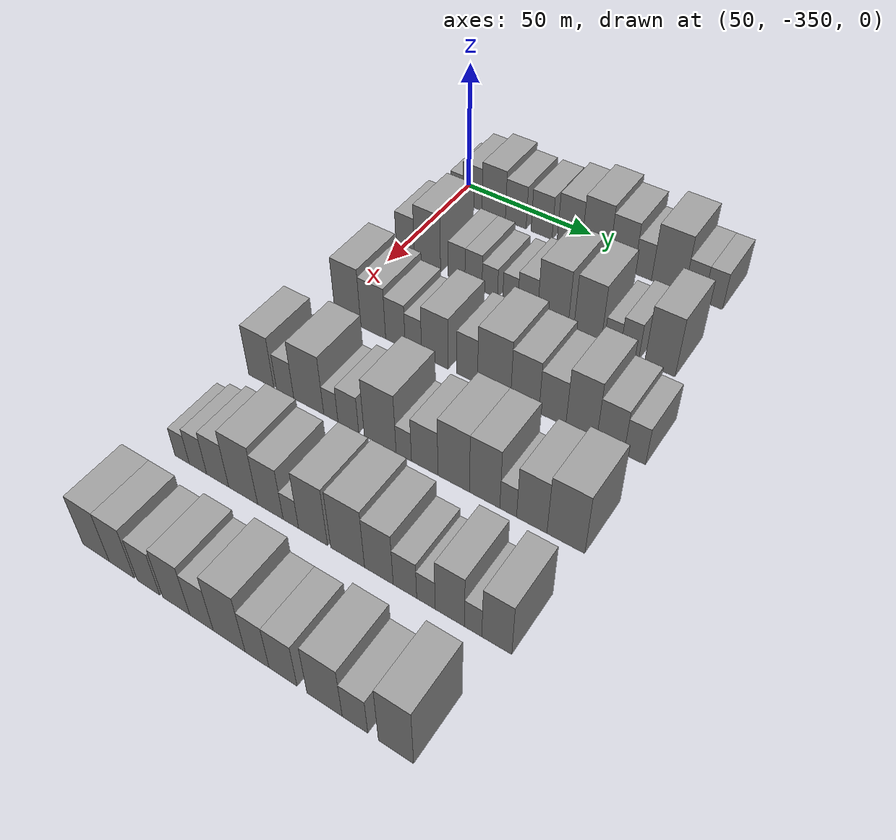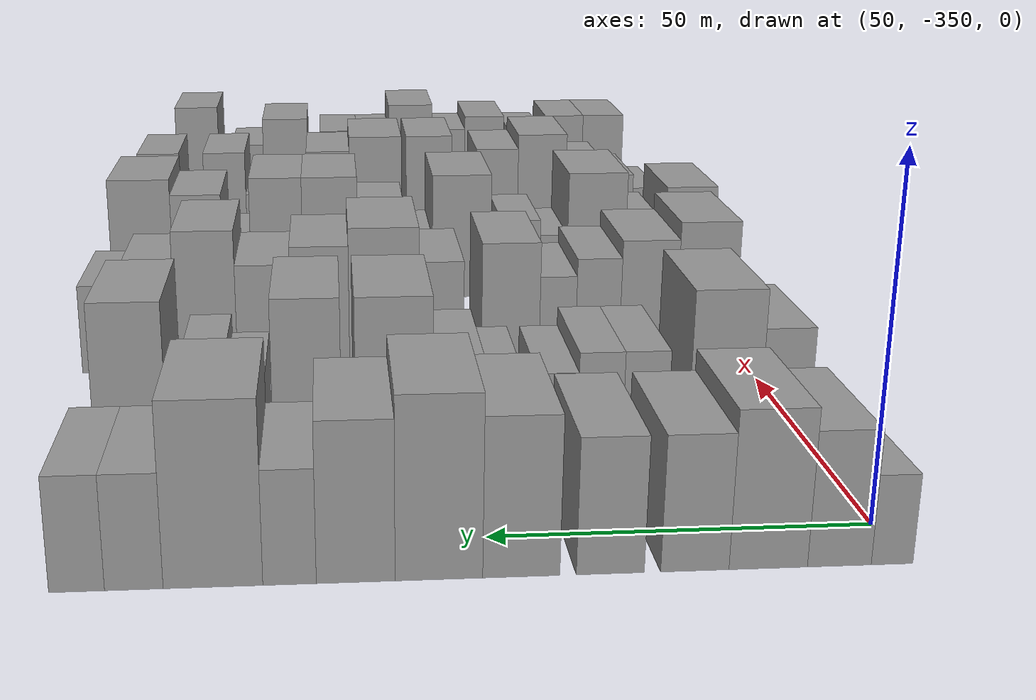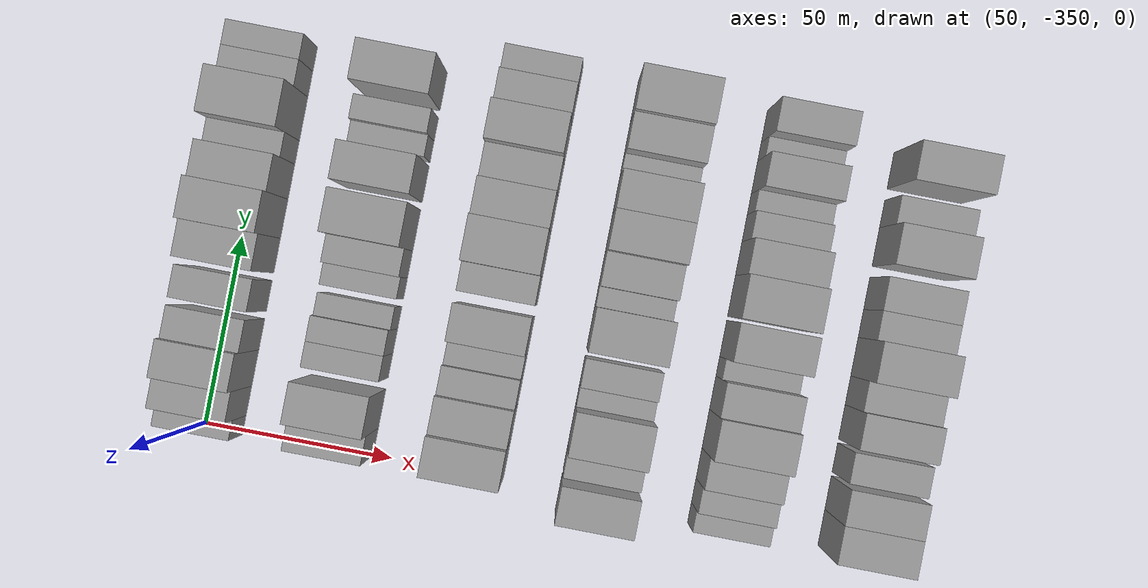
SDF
<sdf version="1.6">
 <world name="default">
  <model name="building_26">
   <static>1</static>
   <pose>50.0000 -348.7964 0 0.000000 0.000000 0.000000</pose>
   <link name="link">
    <pose>0 0 6.00 0 0 0</pose>
    <collision name="collision"><geometry><box><size>20.0000 5.2155 12.0000</size></box></geometry></collision>
    <visual name="visual">
     <cast_shadows>0</cast_shadows>
     <geometry><box><size>20.0000 5.2155 12.0000</size></box></geometry>
     <material>
      <script>
       <uri>model://grey_wall/materials/scripts</uri>
       <uri>model://grey_wall/materials/textures</uri>
       <name>vrc/grey_wall</name>
      </script>
     </material>
    </visual>
   </link>
  </model>
  <model name="building_27">
   <static>1</static>
   <pose>50.0000 -342.2135 0 0.000000 0.000000 0.000000</pose>
   <link name="link">
    <pose>0 0 9.00 0 0 0</pose>
    <collision name="collision"><geometry><box><size>20.0000 7.9502 18.0000</size></box></geometry></collision>
    <visual name="visual">
     <cast_shadows>0</cast_shadows>
     <geometry><box><size>20.0000 7.9502 18.0000</size></box></geometry>
     <material>
      <script>
       <uri>model://grey_wall/materials/scripts</uri>
       <uri>model://grey_wall/materials/textures</uri>
       <name>vrc/grey_wall</name>
      </script>
     </material>
    </visual>
   </link>
  </model>
  <model name="building_28">
   <static>1</static>
   <pose>50.0000 -333.3798 0 0.000000 0.000000 0.000000</pose>
   <link name="link">
    <pose>0 0 10.50 0 0 0</pose>
    <collision name="collision"><geometry><box><size>20.0000 9.7173 21.0000</size></box></geometry></collision>
    <visual name="visual">
     <cast_shadows>0</cast_shadows>
     <geometry><box><size>20.0000 9.7173 21.0000</size></box></geometry>
     <material>
      <script>
       <uri>model://grey_wall/materials/scripts</uri>
       <uri>model://grey_wall/materials/textures</uri>
       <name>vrc/grey_wall</name>
      </script>
     </material>
    </visual>
   </link>
  </model>
  <model name="building_29">
   <static>1</static>
   <pose>50.0000 -324.3185 0 0.000000 0.000000 0.000000</pose>
   <link name="link">
    <pose>0 0 9.00 0 0 0</pose>
    <collision name="collision"><geometry><box><size>20.0000 8.4054 18.0000</size></box></geometry></collision>
    <visual name="visual">
     <cast_shadows>0</cast_shadows>
     <geometry><box><size>20.0000 8.4054 18.0000</size></box></geometry>
     <material>
      <script>
       <uri>model://grey_wall/materials/scripts</uri>
       <uri>model://grey_wall/materials/textures</uri>
       <name>vrc/grey_wall</name>
      </script>
     </material>
    </visual>
   </link>
  </model>
  <model name="building_30">
   <static>1</static>
   <pose>50.0000 -313.9648 0 0.000000 0.000000 0.000000</pose>
   <link name="link">
    <pose>0 0 9.00 0 0 0</pose>
    <collision name="collision"><geometry><box><size>20.0000 8.3019 18.0000</size></box></geometry></collision>
    <visual name="visual">
     <cast_shadows>0</cast_shadows>
     <geometry><box><size>20.0000 8.3019 18.0000</size></box></geometry>
     <material>
      <script>
       <uri>model://grey_wall/materials/scripts</uri>
       <uri>model://grey_wall/materials/textures</uri>
       <name>vrc/grey_wall</name>
      </script>
     </material>
    </visual>
   </link>
  </model>
  <model name="building_31">
   <static>1</static>
   <pose>50.0000 -303.1424 0 0.000000 0.000000 0.000000</pose>
   <link name="link">
    <pose>0 0 10.50 0 0 0</pose>
    <collision name="collision"><geometry><box><size>20.0000 9.3428 21.0000</size></box></geometry></collision>
    <visual name="visual">
     <cast_shadows>0</cast_shadows>
     <geometry><box><size>20.0000 9.3428 21.0000</size></box></geometry>
     <material>
      <script>
       <uri>model://grey_wall/materials/scripts</uri>
       <uri>model://grey_wall/materials/textures</uri>
       <name>vrc/grey_wall</name>
      </script>
     </material>
    </visual>
   </link>
  </model>
  <model name="building_32">
   <static>1</static>
   <pose>50.0000 -293.2054 0 0.000000 0.000000 0.000000</pose>
   <link name="link">
    <pose>0 0 12.00 0 0 0</pose>
    <collision name="collision"><geometry><box><size>20.0000 10.5313 24.0000</size></box></geometry></collision>
    <visual name="visual">
     <cast_shadows>0</cast_shadows>
     <geometry><box><size>20.0000 10.5313 24.0000</size></box></geometry>
     <material>
      <script>
       <uri>model://grey_wall/materials/scripts</uri>
       <uri>model://grey_wall/materials/textures</uri>
       <name>vrc/grey_wall</name>
      </script>
     </material>
    </visual>
   </link>
  </model>
  <model name="building_33">
   <static>1</static>
   <pose>50.0000 -283.2425 0 0.000000 0.000000 0.000000</pose>
   <link name="link">
    <pose>0 0 10.50 0 0 0</pose>
    <collision name="collision"><geometry><box><size>20.0000 9.3945 21.0000</size></box></geometry></collision>
    <visual name="visual">
     <cast_shadows>0</cast_shadows>
     <geometry><box><size>20.0000 9.3945 21.0000</size></box></geometry>
     <material>
      <script>
       <uri>model://grey_wall/materials/scripts</uri>
       <uri>model://grey_wall/materials/textures</uri>
       <name>vrc/grey_wall</name>
      </script>
     </material>
    </visual>
   </link>
  </model>
  <model name="building_34">
   <static>1</static>
   <pose>50.0000 -275.3735 0 0.000000 0.000000 0.000000</pose>
   <link name="link">
    <pose>0 0 7.50 0 0 0</pose>
    <collision name="collision"><geometry><box><size>20.0000 6.3436 15.0000</size></box></geometry></collision>
    <visual name="visual">
     <cast_shadows>0</cast_shadows>
     <geometry><box><size>20.0000 6.3436 15.0000</size></box></geometry>
     <material>
      <script>
       <uri>model://grey_wall/materials/scripts</uri>
       <uri>model://grey_wall/materials/textures</uri>
       <name>vrc/grey_wall</name>
      </script>
     </material>
    </visual>
   </link>
  </model>
  <model name="building_35">
   <static>1</static>
   <pose>50.0000 -266.3294 0 0.000000 0.000000 0.000000</pose>
   <link name="link">
    <pose>0 0 12.00 0 0 0</pose>
    <collision name="collision"><geometry><box><size>20.0000 11.7447 24.0000</size></box></geometry></collision>
    <visual name="visual">
     <cast_shadows>0</cast_shadows>
     <geometry><box><size>20.0000 11.7447 24.0000</size></box></geometry>
     <material>
      <script>
       <uri>model://grey_wall/materials/scripts</uri>
       <uri>model://grey_wall/materials/textures</uri>
       <name>vrc/grey_wall</name>
      </script>
     </material>
    </visual>
   </link>
  </model>
  <model name="building_36">
   <static>1</static>
   <pose>50.0000 -257.0287 0 0.000000 0.000000 0.000000</pose>
   <link name="link">
    <pose>0 0 7.50 0 0 0</pose>
    <collision name="collision"><geometry><box><size>20.0000 6.8566 15.0000</size></box></geometry></collision>
    <visual name="visual">
     <cast_shadows>0</cast_shadows>
     <geometry><box><size>20.0000 6.8566 15.0000</size></box></geometry>
     <material>
      <script>
       <uri>model://grey_wall/materials/scripts</uri>
       <uri>model://grey_wall/materials/textures</uri>
       <name>vrc/grey_wall</name>
      </script>
     </material>
    </visual>
   </link>
  </model>
  <model name="building_37">
   <static>1</static>
   <pose>50.0000 -250.3490 0 0.000000 0.000000 0.000000</pose>
   <link name="link">
    <pose>0 0 7.50 0 0 0</pose>
    <collision name="collision"><geometry><box><size>20.0000 6.5029 15.0000</size></box></geometry></collision>
    <visual name="visual">
     <cast_shadows>0</cast_shadows>
     <geometry><box><size>20.0000 6.5029 15.0000</size></box></geometry>
     <material>
      <script>
       <uri>model://grey_wall/materials/scripts</uri>
       <uri>model://grey_wall/materials/textures</uri>
       <name>vrc/grey_wall</name>
      </script>
     </material>
    </visual>
   </link>
  </model>
  <model name="building_148">
   <static>1</static>
   <pose>85.0000 -346.4494 0 0.000000 0.000000 0.000000</pose>
   <link name="link">
    <pose>0 0 9.00 0 0 0</pose>
    <collision name="collision"><geometry><box><size>20.0000 7.3985 18.0000</size></box></geometry></collision>
    <visual name="visual">
     <cast_shadows>0</cast_shadows>
     <geometry><box><size>20.0000 7.3985 18.0000</size></box></geometry>
     <material>
      <script>
       <uri>model://grey_wall/materials/scripts</uri>
       <uri>model://grey_wall/materials/textures</uri>
       <name>vrc/grey_wall</name>
      </script>
     </material>
    </visual>
   </link>
  </model>
  <model name="building_149">
   <static>1</static>
   <pose>85.0000 -337.4831 0 0.000000 0.000000 0.000000</pose>
   <link name="link">
    <pose>0 0 12.00 0 0 0</pose>
    <collision name="collision"><geometry><box><size>20.0000 10.5341 24.0000</size></box></geometry></collision>
    <visual name="visual">
     <cast_shadows>0</cast_shadows>
     <geometry><box><size>20.0000 10.5341 24.0000</size></box></geometry>
     <material>
      <script>
       <uri>model://grey_wall/materials/scripts</uri>
       <uri>model://grey_wall/materials/textures</uri>
       <name>vrc/grey_wall</name>
      </script>
     </material>
    </visual>
   </link>
  </model>
  <model name="building_150">
   <static>1</static>
   <pose>85.0000 -325.9129 0 0.000000 0.000000 0.000000</pose>
   <link name="link">
    <pose>0 0 7.50 0 0 0</pose>
    <collision name="collision"><geometry><box><size>20.0000 6.6063 15.0000</size></box></geometry></collision>
    <visual name="visual">
     <cast_shadows>0</cast_shadows>
     <geometry><box><size>20.0000 6.6063 15.0000</size></box></geometry>
     <material>
      <script>
       <uri>model://grey_wall/materials/scripts</uri>
       <uri>model://grey_wall/materials/textures</uri>
       <name>vrc/grey_wall</name>
      </script>
     </material>
    </visual>
   </link>
  </model>
  <model name="building_151">
   <static>1</static>
   <pose>85.0000 -319.3068 0 0.000000 0.000000 0.000000</pose>
   <link name="link">
    <pose>0 0 7.50 0 0 0</pose>
    <collision name="collision"><geometry><box><size>20.0000 6.6060 15.0000</size></box></geometry></collision>
    <visual name="visual">
     <cast_shadows>0</cast_shadows>
     <geometry><box><size>20.0000 6.6060 15.0000</size></box></geometry>
     <material>
      <script>
       <uri>model://grey_wall/materials/scripts</uri>
       <uri>model://grey_wall/materials/textures</uri>
       <name>vrc/grey_wall</name>
      </script>
     </material>
    </visual>
   </link>
  </model>
  <model name="building_152">
   <static>1</static>
   <pose>85.0000 -313.0281 0 0.000000 0.000000 0.000000</pose>
   <link name="link">
    <pose>0 0 6.00 0 0 0</pose>
    <collision name="collision"><geometry><box><size>20.0000 5.9512 12.0000</size></box></geometry></collision>
    <visual name="visual">
     <cast_shadows>0</cast_shadows>
     <geometry><box><size>20.0000 5.9512 12.0000</size></box></geometry>
     <material>
      <script>
       <uri>model://grey_wall/materials/scripts</uri>
       <uri>model://grey_wall/materials/textures</uri>
       <name>vrc/grey_wall</name>
      </script>
     </material>
    </visual>
   </link>
  </model>
  <model name="building_153">
   <static>1</static>
   <pose>85.0000 -305.2150 0 0.000000 0.000000 0.000000</pose>
   <link name="link">
    <pose>0 0 6.00 0 0 0</pose>
    <collision name="collision"><geometry><box><size>20.0000 5.6751 12.0000</size></box></geometry></collision>
    <visual name="visual">
     <cast_shadows>0</cast_shadows>
     <geometry><box><size>20.0000 5.6751 12.0000</size></box></geometry>
     <material>
      <script>
       <uri>model://grey_wall/materials/scripts</uri>
       <uri>model://grey_wall/materials/textures</uri>
       <name>vrc/grey_wall</name>
      </script>
     </material>
    </visual>
   </link>
  </model>
  <model name="building_154">
   <static>1</static>
   <pose>85.0000 -298.7469 0 0.000000 0.000000 0.000000</pose>
   <link name="link">
    <pose>0 0 7.50 0 0 0</pose>
    <collision name="collision"><geometry><box><size>20.0000 7.2611 15.0000</size></box></geometry></collision>
    <visual name="visual">
     <cast_shadows>0</cast_shadows>
     <geometry><box><size>20.0000 7.2611 15.0000</size></box></geometry>
     <material>
      <script>
       <uri>model://grey_wall/materials/scripts</uri>
       <uri>model://grey_wall/materials/textures</uri>
       <name>vrc/grey_wall</name>
      </script>
     </material>
    </visual>
   </link>
  </model>
  <model name="building_155">
   <static>1</static>
   <pose>85.0000 -289.5747 0 0.000000 0.000000 0.000000</pose>
   <link name="link">
    <pose>0 0 12.00 0 0 0</pose>
    <collision name="collision"><geometry><box><size>20.0000 11.0833 24.0000</size></box></geometry></collision>
    <visual name="visual">
     <cast_shadows>0</cast_shadows>
     <geometry><box><size>20.0000 11.0833 24.0000</size></box></geometry>
     <material>
      <script>
       <uri>model://grey_wall/materials/scripts</uri>
       <uri>model://grey_wall/materials/textures</uri>
       <name>vrc/grey_wall</name>
      </script>
     </material>
    </visual>
   </link>
  </model>
  <model name="building_156">
   <static>1</static>
   <pose>85.0000 -277.1607 0 0.000000 0.000000 0.000000</pose>
   <link name="link">
    <pose>0 0 12.00 0 0 0</pose>
    <collision name="collision"><geometry><box><size>20.0000 9.7446 24.0000</size></box></geometry></collision>
    <visual name="visual">
     <cast_shadows>0</cast_shadows>
     <geometry><box><size>20.0000 9.7446 24.0000</size></box></geometry>
     <material>
      <script>
       <uri>model://grey_wall/materials/scripts</uri>
       <uri>model://grey_wall/materials/textures</uri>
       <name>vrc/grey_wall</name>
      </script>
     </material>
    </visual>
   </link>
  </model>
  <model name="building_157">
   <static>1</static>
   <pose>85.0000 -268.4667 0 0.000000 0.000000 0.000000</pose>
   <link name="link">
    <pose>0 0 6.00 0 0 0</pose>
    <collision name="collision"><geometry><box><size>20.0000 5.6433 12.0000</size></box></geometry></collision>
    <visual name="visual">
     <cast_shadows>0</cast_shadows>
     <geometry><box><size>20.0000 5.6433 12.0000</size></box></geometry>
     <material>
      <script>
       <uri>model://grey_wall/materials/scripts</uri>
       <uri>model://grey_wall/materials/textures</uri>
       <name>vrc/grey_wall</name>
      </script>
     </material>
    </visual>
   </link>
  </model>
  <model name="building_158">
   <static>1</static>
   <pose>85.0000 -262.5069 0 0.000000 0.000000 0.000000</pose>
   <link name="link">
    <pose>0 0 7.50 0 0 0</pose>
    <collision name="collision"><geometry><box><size>20.0000 6.2764 15.0000</size></box></geometry></collision>
    <visual name="visual">
     <cast_shadows>0</cast_shadows>
     <geometry><box><size>20.0000 6.2764 15.0000</size></box></geometry>
     <material>
      <script>
       <uri>model://grey_wall/materials/scripts</uri>
       <uri>model://grey_wall/materials/textures</uri>
       <name>vrc/grey_wall</name>
      </script>
     </material>
    </visual>
   </link>
  </model>
  <model name="building_159">
   <static>1</static>
   <pose>85.0000 -252.2640 0 0.000000 0.000000 0.000000</pose>
   <link name="link">
    <pose>0 0 12.00 0 0 0</pose>
    <collision name="collision"><geometry><box><size>20.0000 10.2092 24.0000</size></box></geometry></collision>
    <visual name="visual">
     <cast_shadows>0</cast_shadows>
     <geometry><box><size>20.0000 10.2092 24.0000</size></box></geometry>
     <material>
      <script>
       <uri>model://grey_wall/materials/scripts</uri>
       <uri>model://grey_wall/materials/textures</uri>
       <name>vrc/grey_wall</name>
      </script>
     </material>
    </visual>
   </link>
  </model>
  <model name="building_273">
   <static>1</static>
   <pose>120.0000 -343.9708 0 0.000000 0.000000 0.000000</pose>
   <link name="link">
    <pose>0 0 12.00 0 0 0</pose>
    <collision name="collision"><geometry><box><size>20.0000 10.2011 24.0000</size></box></geometry></collision>
    <visual name="visual">
     <cast_shadows>0</cast_shadows>
     <geometry><box><size>20.0000 10.2011 24.0000</size></box></geometry>
     <material>
      <script>
       <uri>model://grey_wall/materials/scripts</uri>
       <uri>model://grey_wall/materials/textures</uri>
       <name>vrc/grey_wall</name>
      </script>
     </material>
    </visual>
   </link>
  </model>
  <model name="building_274">
   <static>1</static>
   <pose>120.0000 -334.0596 0 0.000000 0.000000 0.000000</pose>
   <link name="link">
    <pose>0 0 10.50 0 0 0</pose>
    <collision name="collision"><geometry><box><size>20.0000 9.6213 21.0000</size></box></geometry></collision>
    <visual name="visual">
     <cast_shadows>0</cast_shadows>
     <geometry><box><size>20.0000 9.6213 21.0000</size></box></geometry>
     <material>
      <script>
       <uri>model://grey_wall/materials/scripts</uri>
       <uri>model://grey_wall/materials/textures</uri>
       <name>vrc/grey_wall</name>
      </script>
     </material>
    </visual>
   </link>
  </model>
  <model name="building_275">
   <static>1</static>
   <pose>120.0000 -325.5099 0 0.000000 0.000000 0.000000</pose>
   <link name="link">
    <pose>0 0 9.00 0 0 0</pose>
    <collision name="collision"><geometry><box><size>20.0000 7.4782 18.0000</size></box></geometry></collision>
    <visual name="visual">
     <cast_shadows>0</cast_shadows>
     <geometry><box><size>20.0000 7.4782 18.0000</size></box></geometry>
     <material>
      <script>
       <uri>model://grey_wall/materials/scripts</uri>
       <uri>model://grey_wall/materials/textures</uri>
       <name>vrc/grey_wall</name>
      </script>
     </material>
    </visual>
   </link>
  </model>
  <model name="building_276">
   <static>1</static>
   <pose>120.0000 -318.7000 0 0.000000 0.000000 0.000000</pose>
   <link name="link">
    <pose>0 0 7.50 0 0 0</pose>
    <collision name="collision"><geometry><box><size>20.0000 6.1416 15.0000</size></box></geometry></collision>
    <visual name="visual">
     <cast_shadows>0</cast_shadows>
     <geometry><box><size>20.0000 6.1416 15.0000</size></box></geometry>
     <material>
      <script>
       <uri>model://grey_wall/materials/scripts</uri>
       <uri>model://grey_wall/materials/textures</uri>
       <name>vrc/grey_wall</name>
      </script>
     </material>
    </visual>
   </link>
  </model>
  <model name="building_277">
   <static>1</static>
   <pose>120.0000 -310.7516 0 0.000000 0.000000 0.000000</pose>
   <link name="link">
    <pose>0 0 10.50 0 0 0</pose>
    <collision name="collision"><geometry><box><size>20.0000 9.7553 21.0000</size></box></geometry></collision>
    <visual name="visual">
     <cast_shadows>0</cast_shadows>
     <geometry><box><size>20.0000 9.7553 21.0000</size></box></geometry>
     <material>
      <script>
       <uri>model://grey_wall/materials/scripts</uri>
       <uri>model://grey_wall/materials/textures</uri>
       <name>vrc/grey_wall</name>
      </script>
     </material>
    </visual>
   </link>
  </model>
  <model name="building_278">
   <static>1</static>
   <pose>120.0000 -299.1382 0 0.000000 0.000000 0.000000</pose>
   <link name="link">
    <pose>0 0 9.00 0 0 0</pose>
    <collision name="collision"><geometry><box><size>20.0000 7.4715 18.0000</size></box></geometry></collision>
    <visual name="visual">
     <cast_shadows>0</cast_shadows>
     <geometry><box><size>20.0000 7.4715 18.0000</size></box></geometry>
     <material>
      <script>
       <uri>model://grey_wall/materials/scripts</uri>
       <uri>model://grey_wall/materials/textures</uri>
       <name>vrc/grey_wall</name>
      </script>
     </material>
    </visual>
   </link>
  </model>
  <model name="building_279">
   <static>1</static>
   <pose>120.0000 -289.5880 0 0.000000 0.000000 0.000000</pose>
   <link name="link">
    <pose>0 0 12.00 0 0 0</pose>
    <collision name="collision"><geometry><box><size>20.0000 11.6289 24.0000</size></box></geometry></collision>
    <visual name="visual">
     <cast_shadows>0</cast_shadows>
     <geometry><box><size>20.0000 11.6289 24.0000</size></box></geometry>
     <material>
      <script>
       <uri>model://grey_wall/materials/scripts</uri>
       <uri>model://grey_wall/materials/textures</uri>
       <name>vrc/grey_wall</name>
      </script>
     </material>
    </visual>
   </link>
  </model>
  <model name="building_280">
   <static>1</static>
   <pose>120.0000 -278.9416 0 0.000000 0.000000 0.000000</pose>
   <link name="link">
    <pose>0 0 10.50 0 0 0</pose>
    <collision name="collision"><geometry><box><size>20.0000 9.6640 21.0000</size></box></geometry></collision>
    <visual name="visual">
     <cast_shadows>0</cast_shadows>
     <geometry><box><size>20.0000 9.6640 21.0000</size></box></geometry>
     <material>
      <script>
       <uri>model://grey_wall/materials/scripts</uri>
       <uri>model://grey_wall/materials/textures</uri>
       <name>vrc/grey_wall</name>
      </script>
     </material>
    </visual>
   </link>
  </model>
  <model name="building_281">
   <static>1</static>
   <pose>120.0000 -269.6468 0 0.000000 0.000000 0.000000</pose>
   <link name="link">
    <pose>0 0 9.00 0 0 0</pose>
    <collision name="collision"><geometry><box><size>20.0000 8.9255 18.0000</size></box></geometry></collision>
    <visual name="visual">
     <cast_shadows>0</cast_shadows>
     <geometry><box><size>20.0000 8.9255 18.0000</size></box></geometry>
     <material>
      <script>
       <uri>model://grey_wall/materials/scripts</uri>
       <uri>model://grey_wall/materials/textures</uri>
       <name>vrc/grey_wall</name>
      </script>
     </material>
    </visual>
   </link>
  </model>
  <model name="building_282">
   <static>1</static>
   <pose>120.0000 -260.1610 0 0.000000 0.000000 0.000000</pose>
   <link name="link">
    <pose>0 0 12.00 0 0 0</pose>
    <collision name="collision"><geometry><box><size>20.0000 10.0461 24.0000</size></box></geometry></collision>
    <visual name="visual">
     <cast_shadows>0</cast_shadows>
     <geometry><box><size>20.0000 10.0461 24.0000</size></box></geometry>
     <material>
      <script>
       <uri>model://grey_wall/materials/scripts</uri>
       <uri>model://grey_wall/materials/textures</uri>
       <name>vrc/grey_wall</name>
      </script>
     </material>
    </visual>
   </link>
  </model>
  <model name="building_283">
   <static>1</static>
   <pose>120.0000 -250.7891 0 0.000000 0.000000 0.000000</pose>
   <link name="link">
    <pose>0 0 9.00 0 0 0</pose>
    <collision name="collision"><geometry><box><size>20.0000 8.6977 18.0000</size></box></geometry></collision>
    <visual name="visual">
     <cast_shadows>0</cast_shadows>
     <geometry><box><size>20.0000 8.6977 18.0000</size></box></geometry>
     <material>
      <script>
       <uri>model://grey_wall/materials/scripts</uri>
       <uri>model://grey_wall/materials/textures</uri>
       <name>vrc/grey_wall</name>
      </script>
     </material>
    </visual>
   </link>
  </model>
  <model name="building_284">
   <static>1</static>
   <pose>120.0000 -243.0550 0 0.000000 0.000000 0.000000</pose>
   <link name="link">
    <pose>0 0 7.50 0 0 0</pose>
    <collision name="collision"><geometry><box><size>20.0000 6.7704 15.0000</size></box></geometry></collision>
    <visual name="visual">
     <cast_shadows>0</cast_shadows>
     <geometry><box><size>20.0000 6.7704 15.0000</size></box></geometry>
     <material>
      <script>
       <uri>model://grey_wall/materials/scripts</uri>
       <uri>model://grey_wall/materials/textures</uri>
       <name>vrc/grey_wall</name>
      </script>
     </material>
    </visual>
   </link>
  </model>
  <model name="building_399">
   <static>1</static>
   <pose>155.0000 -349.8524 0 0.000000 0.000000 0.000000</pose>
   <link name="link">
    <pose>0 0 10.50 0 0 0</pose>
    <collision name="collision"><geometry><box><size>20.0000 9.7949 21.0000</size></box></geometry></collision>
    <visual name="visual">
     <cast_shadows>0</cast_shadows>
     <geometry><box><size>20.0000 9.7949 21.0000</size></box></geometry>
     <material>
      <script>
       <uri>model://grey_wall/materials/scripts</uri>
       <uri>model://grey_wall/materials/textures</uri>
       <name>vrc/grey_wall</name>
      </script>
     </material>
    </visual>
   </link>
  </model>
  <model name="building_400">
   <static>1</static>
   <pose>155.0000 -340.6437 0 0.000000 0.000000 0.000000</pose>
   <link name="link">
    <pose>0 0 7.50 0 0 0</pose>
    <collision name="collision"><geometry><box><size>20.0000 6.6225 15.0000</size></box></geometry></collision>
    <visual name="visual">
     <cast_shadows>0</cast_shadows>
     <geometry><box><size>20.0000 6.6225 15.0000</size></box></geometry>
     <material>
      <script>
       <uri>model://grey_wall/materials/scripts</uri>
       <uri>model://grey_wall/materials/textures</uri>
       <name>vrc/grey_wall</name>
      </script>
     </material>
    </visual>
   </link>
  </model>
  <model name="building_401">
   <static>1</static>
   <pose>155.0000 -331.7100 0 0.000000 0.000000 0.000000</pose>
   <link name="link">
    <pose>0 0 12.00 0 0 0</pose>
    <collision name="collision"><geometry><box><size>20.0000 11.2450 24.0000</size></box></geometry></collision>
    <visual name="visual">
     <cast_shadows>0</cast_shadows>
     <geometry><box><size>20.0000 11.2450 24.0000</size></box></geometry>
     <material>
      <script>
       <uri>model://grey_wall/materials/scripts</uri>
       <uri>model://grey_wall/materials/textures</uri>
       <name>vrc/grey_wall</name>
      </script>
     </material>
    </visual>
   </link>
  </model>
  <model name="building_402">
   <static>1</static>
   <pose>155.0000 -323.4785 0 0.000000 0.000000 0.000000</pose>
   <link name="link">
    <pose>0 0 6.00 0 0 0</pose>
    <collision name="collision"><geometry><box><size>20.0000 5.2180 12.0000</size></box></geometry></collision>
    <visual name="visual">
     <cast_shadows>0</cast_shadows>
     <geometry><box><size>20.0000 5.2180 12.0000</size></box></geometry>
     <material>
      <script>
       <uri>model://grey_wall/materials/scripts</uri>
       <uri>model://grey_wall/materials/textures</uri>
       <name>vrc/grey_wall</name>
      </script>
     </material>
    </visual>
   </link>
  </model>
  <model name="building_403">
   <static>1</static>
   <pose>155.0000 -317.1235 0 0.000000 0.000000 0.000000</pose>
   <link name="link">
    <pose>0 0 7.50 0 0 0</pose>
    <collision name="collision"><geometry><box><size>20.0000 7.4919 15.0000</size></box></geometry></collision>
    <visual name="visual">
     <cast_shadows>0</cast_shadows>
     <geometry><box><size>20.0000 7.4919 15.0000</size></box></geometry>
     <material>
      <script>
       <uri>model://grey_wall/materials/scripts</uri>
       <uri>model://grey_wall/materials/textures</uri>
       <name>vrc/grey_wall</name>
      </script>
     </material>
    </visual>
   </link>
  </model>
  <model name="building_404">
   <static>1</static>
   <pose>155.0000 -305.7935 0 0.000000 0.000000 0.000000</pose>
   <link name="link">
    <pose>0 0 12.00 0 0 0</pose>
    <collision name="collision"><geometry><box><size>20.0000 11.1681 24.0000</size></box></geometry></collision>
    <visual name="visual">
     <cast_shadows>0</cast_shadows>
     <geometry><box><size>20.0000 11.1681 24.0000</size></box></geometry>
     <material>
      <script>
       <uri>model://grey_wall/materials/scripts</uri>
       <uri>model://grey_wall/materials/textures</uri>
       <name>vrc/grey_wall</name>
      </script>
     </material>
    </visual>
   </link>
  </model>
  <model name="building_405">
   <static>1</static>
   <pose>155.0000 -297.5695 0 0.000000 0.000000 0.000000</pose>
   <link name="link">
    <pose>0 0 6.00 0 0 0</pose>
    <collision name="collision"><geometry><box><size>20.0000 5.2800 12.0000</size></box></geometry></collision>
    <visual name="visual">
     <cast_shadows>0</cast_shadows>
     <geometry><box><size>20.0000 5.2800 12.0000</size></box></geometry>
     <material>
      <script>
       <uri>model://grey_wall/materials/scripts</uri>
       <uri>model://grey_wall/materials/textures</uri>
       <name>vrc/grey_wall</name>
      </script>
     </material>
    </visual>
   </link>
  </model>
  <model name="building_406">
   <static>1</static>
   <pose>155.0000 -290.4606 0 0.000000 0.000000 0.000000</pose>
   <link name="link">
    <pose>0 0 9.00 0 0 0</pose>
    <collision name="collision"><geometry><box><size>20.0000 8.9379 18.0000</size></box></geometry></collision>
    <visual name="visual">
     <cast_shadows>0</cast_shadows>
     <geometry><box><size>20.0000 8.9379 18.0000</size></box></geometry>
     <material>
      <script>
       <uri>model://grey_wall/materials/scripts</uri>
       <uri>model://grey_wall/materials/textures</uri>
       <name>vrc/grey_wall</name>
      </script>
     </material>
    </visual>
   </link>
  </model>
  <model name="building_407">
   <static>1</static>
   <pose>155.0000 -280.8181 0 0.000000 0.000000 0.000000</pose>
   <link name="link">
    <pose>0 0 12.00 0 0 0</pose>
    <collision name="collision"><geometry><box><size>20.0000 10.3470 24.0000</size></box></geometry></collision>
    <visual name="visual">
     <cast_shadows>0</cast_shadows>
     <geometry><box><size>20.0000 10.3470 24.0000</size></box></geometry>
     <material>
      <script>
       <uri>model://grey_wall/materials/scripts</uri>
       <uri>model://grey_wall/materials/textures</uri>
       <name>vrc/grey_wall</name>
      </script>
     </material>
    </visual>
   </link>
  </model>
  <model name="building_408">
   <static>1</static>
   <pose>155.0000 -270.7621 0 0.000000 0.000000 0.000000</pose>
   <link name="link">
    <pose>0 0 12.00 0 0 0</pose>
    <collision name="collision"><geometry><box><size>20.0000 9.7650 24.0000</size></box></geometry></collision>
    <visual name="visual">
     <cast_shadows>0</cast_shadows>
     <geometry><box><size>20.0000 9.7650 24.0000</size></box></geometry>
     <material>
      <script>
       <uri>model://grey_wall/materials/scripts</uri>
       <uri>model://grey_wall/materials/textures</uri>
       <name>vrc/grey_wall</name>
      </script>
     </material>
    </visual>
   </link>
  </model>
  <model name="building_409">
   <static>1</static>
   <pose>155.0000 -263.2362 0 0.000000 0.000000 0.000000</pose>
   <link name="link">
    <pose>0 0 6.00 0 0 0</pose>
    <collision name="collision"><geometry><box><size>20.0000 5.2868 12.0000</size></box></geometry></collision>
    <visual name="visual">
     <cast_shadows>0</cast_shadows>
     <geometry><box><size>20.0000 5.2868 12.0000</size></box></geometry>
     <material>
      <script>
       <uri>model://grey_wall/materials/scripts</uri>
       <uri>model://grey_wall/materials/textures</uri>
       <name>vrc/grey_wall</name>
      </script>
     </material>
    </visual>
   </link>
  </model>
  <model name="building_410">
   <static>1</static>
   <pose>155.0000 -255.9141 0 0.000000 0.000000 0.000000</pose>
   <link name="link">
    <pose>0 0 10.50 0 0 0</pose>
    <collision name="collision"><geometry><box><size>20.0000 9.3574 21.0000</size></box></geometry></collision>
    <visual name="visual">
     <cast_shadows>0</cast_shadows>
     <geometry><box><size>20.0000 9.3574 21.0000</size></box></geometry>
     <material>
      <script>
       <uri>model://grey_wall/materials/scripts</uri>
       <uri>model://grey_wall/materials/textures</uri>
       <name>vrc/grey_wall</name>
      </script>
     </material>
    </visual>
   </link>
  </model>
  <model name="building_411">
   <static>1</static>
   <pose>155.0000 -245.5394 0 0.000000 0.000000 0.000000</pose>
   <link name="link">
    <pose>0 0 12.00 0 0 0</pose>
    <collision name="collision"><geometry><box><size>20.0000 11.3920 24.0000</size></box></geometry></collision>
    <visual name="visual">
     <cast_shadows>0</cast_shadows>
     <geometry><box><size>20.0000 11.3920 24.0000</size></box></geometry>
     <material>
      <script>
       <uri>model://grey_wall/materials/scripts</uri>
       <uri>model://grey_wall/materials/textures</uri>
       <name>vrc/grey_wall</name>
      </script>
     </material>
    </visual>
   </link>
  </model>
  <model name="building_520">
   <static>1</static>
   <pose>190.0000 -348.8999 0 0.000000 0.000000 0.000000</pose>
   <link name="link">
    <pose>0 0 6.00 0 0 0</pose>
    <collision name="collision"><geometry><box><size>20.0000 5.4517 12.0000</size></box></geometry></collision>
    <visual name="visual">
     <cast_shadows>0</cast_shadows>
     <geometry><box><size>20.0000 5.4517 12.0000</size></box></geometry>
     <material>
      <script>
       <uri>model://grey_wall/materials/scripts</uri>
       <uri>model://grey_wall/materials/textures</uri>
       <name>vrc/grey_wall</name>
      </script>
     </material>
    </visual>
   </link>
  </model>
  <model name="building_521">
   <static>1</static>
   <pose>190.0000 -342.9201 0 0.000000 0.000000 0.000000</pose>
   <link name="link">
    <pose>0 0 7.50 0 0 0</pose>
    <collision name="collision"><geometry><box><size>20.0000 6.5080 15.0000</size></box></geometry></collision>
    <visual name="visual">
     <cast_shadows>0</cast_shadows>
     <geometry><box><size>20.0000 6.5080 15.0000</size></box></geometry>
     <material>
      <script>
       <uri>model://grey_wall/materials/scripts</uri>
       <uri>model://grey_wall/materials/textures</uri>
       <name>vrc/grey_wall</name>
      </script>
     </material>
    </visual>
   </link>
  </model>
  <model name="building_522">
   <static>1</static>
   <pose>190.0000 -335.6119 0 0.000000 0.000000 0.000000</pose>
   <link name="link">
    <pose>0 0 9.00 0 0 0</pose>
    <collision name="collision"><geometry><box><size>20.0000 8.1084 18.0000</size></box></geometry></collision>
    <visual name="visual">
     <cast_shadows>0</cast_shadows>
     <geometry><box><size>20.0000 8.1084 18.0000</size></box></geometry>
     <material>
      <script>
       <uri>model://grey_wall/materials/scripts</uri>
       <uri>model://grey_wall/materials/textures</uri>
       <name>vrc/grey_wall</name>
      </script>
     </material>
    </visual>
   </link>
  </model>
  <model name="building_523">
   <static>1</static>
   <pose>190.0000 -326.3696 0 0.000000 0.000000 0.000000</pose>
   <link name="link">
    <pose>0 0 12.00 0 0 0</pose>
    <collision name="collision"><geometry><box><size>20.0000 10.3762 24.0000</size></box></geometry></collision>
    <visual name="visual">
     <cast_shadows>0</cast_shadows>
     <geometry><box><size>20.0000 10.3762 24.0000</size></box></geometry>
     <material>
      <script>
       <uri>model://grey_wall/materials/scripts</uri>
       <uri>model://grey_wall/materials/textures</uri>
       <name>vrc/grey_wall</name>
      </script>
     </material>
    </visual>
   </link>
  </model>
  <model name="building_524">
   <static>1</static>
   <pose>190.0000 -316.7179 0 0.000000 0.000000 0.000000</pose>
   <link name="link">
    <pose>0 0 10.50 0 0 0</pose>
    <collision name="collision"><geometry><box><size>20.0000 8.9272 21.0000</size></box></geometry></collision>
    <visual name="visual">
     <cast_shadows>0</cast_shadows>
     <geometry><box><size>20.0000 8.9272 21.0000</size></box></geometry>
     <material>
      <script>
       <uri>model://grey_wall/materials/scripts</uri>
       <uri>model://grey_wall/materials/textures</uri>
       <name>vrc/grey_wall</name>
      </script>
     </material>
    </visual>
   </link>
  </model>
  <model name="building_525">
   <static>1</static>
   <pose>190.0000 -309.6119 0 0.000000 0.000000 0.000000</pose>
   <link name="link">
    <pose>0 0 6.00 0 0 0</pose>
    <collision name="collision"><geometry><box><size>20.0000 5.2848 12.0000</size></box></geometry></collision>
    <visual name="visual">
     <cast_shadows>0</cast_shadows>
     <geometry><box><size>20.0000 5.2848 12.0000</size></box></geometry>
     <material>
      <script>
       <uri>model://grey_wall/materials/scripts</uri>
       <uri>model://grey_wall/materials/textures</uri>
       <name>vrc/grey_wall</name>
      </script>
     </material>
    </visual>
   </link>
  </model>
  <model name="building_526">
   <static>1</static>
   <pose>190.0000 -302.0915 0 0.000000 0.000000 0.000000</pose>
   <link name="link">
    <pose>0 0 12.00 0 0 0</pose>
    <collision name="collision"><geometry><box><size>20.0000 9.7559 24.0000</size></box></geometry></collision>
    <visual name="visual">
     <cast_shadows>0</cast_shadows>
     <geometry><box><size>20.0000 9.7559 24.0000</size></box></geometry>
     <material>
      <script>
       <uri>model://grey_wall/materials/scripts</uri>
       <uri>model://grey_wall/materials/textures</uri>
       <name>vrc/grey_wall</name>
      </script>
     </material>
    </visual>
   </link>
  </model>
  <model name="building_527">
   <static>1</static>
   <pose>190.0000 -290.6841 0 0.000000 0.000000 0.000000</pose>
   <link name="link">
    <pose>0 0 12.00 0 0 0</pose>
    <collision name="collision"><geometry><box><size>20.0000 11.0589 24.0000</size></box></geometry></collision>
    <visual name="visual">
     <cast_shadows>0</cast_shadows>
     <geometry><box><size>20.0000 11.0589 24.0000</size></box></geometry>
     <material>
      <script>
       <uri>model://grey_wall/materials/scripts</uri>
       <uri>model://grey_wall/materials/textures</uri>
       <name>vrc/grey_wall</name>
      </script>
     </material>
    </visual>
   </link>
  </model>
  <model name="building_528">
   <static>1</static>
   <pose>190.0000 -280.6127 0 0.000000 0.000000 0.000000</pose>
   <link name="link">
    <pose>0 0 10.50 0 0 0</pose>
    <collision name="collision"><geometry><box><size>20.0000 9.0837 21.0000</size></box></geometry></collision>
    <visual name="visual">
     <cast_shadows>0</cast_shadows>
     <geometry><box><size>20.0000 9.0837 21.0000</size></box></geometry>
     <material>
      <script>
       <uri>model://grey_wall/materials/scripts</uri>
       <uri>model://grey_wall/materials/textures</uri>
       <name>vrc/grey_wall</name>
      </script>
     </material>
    </visual>
   </link>
  </model>
  <model name="building_529">
   <static>1</static>
   <pose>190.0000 -272.4365 0 0.000000 0.000000 0.000000</pose>
   <link name="link">
    <pose>0 0 7.50 0 0 0</pose>
    <collision name="collision"><geometry><box><size>20.0000 7.2687 15.0000</size></box></geometry></collision>
    <visual name="visual">
     <cast_shadows>0</cast_shadows>
     <geometry><box><size>20.0000 7.2687 15.0000</size></box></geometry>
     <material>
      <script>
       <uri>model://grey_wall/materials/scripts</uri>
       <uri>model://grey_wall/materials/textures</uri>
       <name>vrc/grey_wall</name>
      </script>
     </material>
    </visual>
   </link>
  </model>
  <model name="building_530">
   <static>1</static>
   <pose>190.0000 -265.9991 0 0.000000 0.000000 0.000000</pose>
   <link name="link">
    <pose>0 0 6.00 0 0 0</pose>
    <collision name="collision"><geometry><box><size>20.0000 5.6061 12.0000</size></box></geometry></collision>
    <visual name="visual">
     <cast_shadows>0</cast_shadows>
     <geometry><box><size>20.0000 5.6061 12.0000</size></box></geometry>
     <material>
      <script>
       <uri>model://grey_wall/materials/scripts</uri>
       <uri>model://grey_wall/materials/textures</uri>
       <name>vrc/grey_wall</name>
      </script>
     </material>
    </visual>
   </link>
  </model>
  <model name="building_531">
   <static>1</static>
   <pose>190.0000 -258.8381 0 0.000000 0.000000 0.000000</pose>
   <link name="link">
    <pose>0 0 10.50 0 0 0</pose>
    <collision name="collision"><geometry><box><size>20.0000 8.7160 21.0000</size></box></geometry></collision>
    <visual name="visual">
     <cast_shadows>0</cast_shadows>
     <geometry><box><size>20.0000 8.7160 21.0000</size></box></geometry>
     <material>
      <script>
       <uri>model://grey_wall/materials/scripts</uri>
       <uri>model://grey_wall/materials/textures</uri>
       <name>vrc/grey_wall</name>
      </script>
     </material>
    </visual>
   </link>
  </model>
  <model name="building_532">
   <static>1</static>
   <pose>190.0000 -251.9561 0 0.000000 0.000000 0.000000</pose>
   <link name="link">
    <pose>0 0 6.00 0 0 0</pose>
    <collision name="collision"><geometry><box><size>20.0000 5.0481 12.0000</size></box></geometry></collision>
    <visual name="visual">
     <cast_shadows>0</cast_shadows>
     <geometry><box><size>20.0000 5.0481 12.0000</size></box></geometry>
     <material>
      <script>
       <uri>model://grey_wall/materials/scripts</uri>
       <uri>model://grey_wall/materials/textures</uri>
       <name>vrc/grey_wall</name>
      </script>
     </material>
    </visual>
   </link>
  </model>
  <model name="building_533">
   <static>1</static>
   <pose>190.0000 -245.1245 0 0.000000 0.000000 0.000000</pose>
   <link name="link">
    <pose>0 0 10.50 0 0 0</pose>
    <collision name="collision"><geometry><box><size>20.0000 8.6150 21.0000</size></box></geometry></collision>
    <visual name="visual">
     <cast_shadows>0</cast_shadows>
     <geometry><box><size>20.0000 8.6150 21.0000</size></box></geometry>
     <material>
      <script>
       <uri>model://grey_wall/materials/scripts</uri>
       <uri>model://grey_wall/materials/textures</uri>
       <name>vrc/grey_wall</name>
      </script>
     </material>
    </visual>
   </link>
  </model>
  <model name="building_647">
   <static>1</static>
   <pose>225.0000 -346.1576 0 0.000000 0.000000 0.000000</pose>
   <link name="link">
    <pose>0 0 10.50 0 0 0</pose>
    <collision name="collision"><geometry><box><size>20.0000 9.6417 21.0000</size></box></geometry></collision>
    <visual name="visual">
     <cast_shadows>0</cast_shadows>
     <geometry><box><size>20.0000 9.6417 21.0000</size></box></geometry>
     <material>
      <script>
       <uri>model://grey_wall/materials/scripts</uri>
       <uri>model://grey_wall/materials/textures</uri>
       <name>vrc/grey_wall</name>
      </script>
     </material>
    </visual>
   </link>
  </model>
  <model name="building_648">
   <static>1</static>
   <pose>225.0000 -336.8144 0 0.000000 0.000000 0.000000</pose>
   <link name="link">
    <pose>0 0 10.50 0 0 0</pose>
    <collision name="collision"><geometry><box><size>20.0000 9.0447 21.0000</size></box></geometry></collision>
    <visual name="visual">
     <cast_shadows>0</cast_shadows>
     <geometry><box><size>20.0000 9.0447 21.0000</size></box></geometry>
     <material>
      <script>
       <uri>model://grey_wall/materials/scripts</uri>
       <uri>model://grey_wall/materials/textures</uri>
       <name>vrc/grey_wall</name>
      </script>
     </material>
    </visual>
   </link>
  </model>
  <model name="building_649">
   <static>1</static>
   <pose>225.0000 -327.3464 0 0.000000 0.000000 0.000000</pose>
   <link name="link">
    <pose>0 0 9.00 0 0 0</pose>
    <collision name="collision"><geometry><box><size>20.0000 7.8914 18.0000</size></box></geometry></collision>
    <visual name="visual">
     <cast_shadows>0</cast_shadows>
     <geometry><box><size>20.0000 7.8914 18.0000</size></box></geometry>
     <material>
      <script>
       <uri>model://grey_wall/materials/scripts</uri>
       <uri>model://grey_wall/materials/textures</uri>
       <name>vrc/grey_wall</name>
      </script>
     </material>
    </visual>
   </link>
  </model>
  <model name="building_650">
   <static>1</static>
   <pose>225.0000 -317.7765 0 0.000000 0.000000 0.000000</pose>
   <link name="link">
    <pose>0 0 10.50 0 0 0</pose>
    <collision name="collision"><geometry><box><size>20.0000 9.2484 21.0000</size></box></geometry></collision>
    <visual name="visual">
     <cast_shadows>0</cast_shadows>
     <geometry><box><size>20.0000 9.2484 21.0000</size></box></geometry>
     <material>
      <script>
       <uri>model://grey_wall/materials/scripts</uri>
       <uri>model://grey_wall/materials/textures</uri>
       <name>vrc/grey_wall</name>
      </script>
     </material>
    </visual>
   </link>
  </model>
  <model name="building_651">
   <static>1</static>
   <pose>225.0000 -309.2663 0 0.000000 0.000000 0.000000</pose>
   <link name="link">
    <pose>0 0 9.00 0 0 0</pose>
    <collision name="collision"><geometry><box><size>20.0000 7.7721 18.0000</size></box></geometry></collision>
    <visual name="visual">
     <cast_shadows>0</cast_shadows>
     <geometry><box><size>20.0000 7.7721 18.0000</size></box></geometry>
     <material>
      <script>
       <uri>model://grey_wall/materials/scripts</uri>
       <uri>model://grey_wall/materials/textures</uri>
       <name>vrc/grey_wall</name>
      </script>
     </material>
    </visual>
   </link>
  </model>
  <model name="building_652">
   <static>1</static>
   <pose>225.0000 -300.2149 0 0.000000 0.000000 0.000000</pose>
   <link name="link">
    <pose>0 0 12.00 0 0 0</pose>
    <collision name="collision"><geometry><box><size>20.0000 10.3306 24.0000</size></box></geometry></collision>
    <visual name="visual">
     <cast_shadows>0</cast_shadows>
     <geometry><box><size>20.0000 10.3306 24.0000</size></box></geometry>
     <material>
      <script>
       <uri>model://grey_wall/materials/scripts</uri>
       <uri>model://grey_wall/materials/textures</uri>
       <name>vrc/grey_wall</name>
      </script>
     </material>
    </visual>
   </link>
  </model>
  <model name="building_653">
   <static>1</static>
   <pose>225.0000 -291.2835 0 0.000000 0.000000 0.000000</pose>
   <link name="link">
    <pose>0 0 9.00 0 0 0</pose>
    <collision name="collision"><geometry><box><size>20.0000 7.5321 18.0000</size></box></geometry></collision>
    <visual name="visual">
     <cast_shadows>0</cast_shadows>
     <geometry><box><size>20.0000 7.5321 18.0000</size></box></geometry>
     <material>
      <script>
       <uri>model://grey_wall/materials/scripts</uri>
       <uri>model://grey_wall/materials/textures</uri>
       <name>vrc/grey_wall</name>
      </script>
     </material>
    </visual>
   </link>
  </model>
  <model name="building_654">
   <static>1</static>
   <pose>225.0000 -283.2065 0 0.000000 0.000000 0.000000</pose>
   <link name="link">
    <pose>0 0 9.00 0 0 0</pose>
    <collision name="collision"><geometry><box><size>20.0000 8.6220 18.0000</size></box></geometry></collision>
    <visual name="visual">
     <cast_shadows>0</cast_shadows>
     <geometry><box><size>20.0000 8.6220 18.0000</size></box></geometry>
     <material>
      <script>
       <uri>model://grey_wall/materials/scripts</uri>
       <uri>model://grey_wall/materials/textures</uri>
       <name>vrc/grey_wall</name>
      </script>
     </material>
    </visual>
   </link>
  </model>
  <model name="building_655">
   <static>1</static>
   <pose>225.0000 -270.6860 0 0.000000 0.000000 0.000000</pose>
   <link name="link">
    <pose>0 0 10.50 0 0 0</pose>
    <collision name="collision"><geometry><box><size>20.0000 10.4190 21.0000</size></box></geometry></collision>
    <visual name="visual">
     <cast_shadows>0</cast_shadows>
     <geometry><box><size>20.0000 10.4190 21.0000</size></box></geometry>
     <material>
      <script>
       <uri>model://grey_wall/materials/scripts</uri>
       <uri>model://grey_wall/materials/textures</uri>
       <name>vrc/grey_wall</name>
      </script>
     </material>
    </visual>
   </link>
  </model>
  <model name="building_656">
   <static>1</static>
   <pose>225.0000 -261.7863 0 0.000000 0.000000 0.000000</pose>
   <link name="link">
    <pose>0 0 7.50 0 0 0</pose>
    <collision name="collision"><geometry><box><size>20.0000 7.3803 15.0000</size></box></geometry></collision>
    <visual name="visual">
     <cast_shadows>0</cast_shadows>
     <geometry><box><size>20.0000 7.3803 15.0000</size></box></geometry>
     <material>
      <script>
       <uri>model://grey_wall/materials/scripts</uri>
       <uri>model://grey_wall/materials/textures</uri>
       <name>vrc/grey_wall</name>
      </script>
     </material>
    </visual>
   </link>
  </model>
  <model name="building_657">
   <static>1</static>
   <pose>225.0000 -250.1952 0 0.000000 0.000000 0.000000</pose>
   <link name="link">
    <pose>0 0 12.00 0 0 0</pose>
    <collision name="collision"><geometry><box><size>20.0000 9.8019 24.0000</size></box></geometry></collision>
    <visual name="visual">
     <cast_shadows>0</cast_shadows>
     <geometry><box><size>20.0000 9.8019 24.0000</size></box></geometry>
     <material>
      <script>
       <uri>model://grey_wall/materials/scripts</uri>
       <uri>model://grey_wall/materials/textures</uri>
       <name>vrc/grey_wall</name>
      </script>
     </material>
    </visual>
   </link>
  </model>
 </world>
</sdf>
